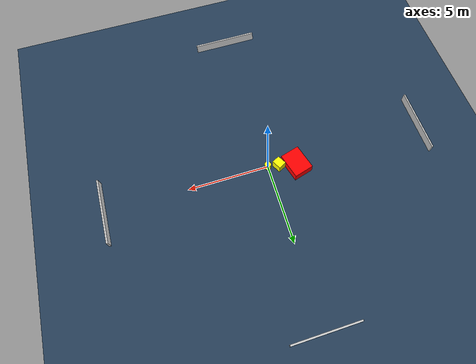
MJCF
<?xml version="1.0" ?>
<mujoco model="generated_environment">
  <option timestep="0.01" integrator="RK4" cone="elliptic"/>
  <default>
    <geom density="1"/>
  </default>
  <asset>
    <texture builtin="gradient" height="3072" name="skybox" rgb1="0.3 0.5 0.7" rgb2="0 0 0" type="skybox" width="512"/>
    <texture builtin="checker" height="300" name="groundplane" rgb1="0.2 0.3 0.4" rgb2="0.1 0.2 0.3" type="2d" width="300"/>
    <material name="groundplane" reflectance="0.2" texrepeat="5 5" texture="groundplane"/>
  </asset>
  <worldbody>
    <light dir="0 0 -1" directional="true" pos="0 0 1.5"/>
    <geom condim="3" friction="0.5 0.005 0.001" material="groundplane" name="floor" pos="0 0 0" size="0 0 0.05" type="plane"/>
    <body name="walls">
      <geom name="wall_1" condim="4" pos="-10.0 0.0 0.3" rgba="0.800000011920929 0.800000011920929 0.800000011920929 1.0" size="0.05 2.0 0.3" type="box"/>
      <geom name="wall_2" condim="4" pos="10.0 0.0 0.3" rgba="0.800000011920929 0.800000011920929 0.800000011920929 1.0" size="0.05 2.0 0.3" type="box"/>
      <geom name="wall_3" condim="4" pos="0.0 -10.0 0.3" rgba="0.800000011920929 0.800000011920929 0.800000011920929 1.0" size="2.0 0.05 0.3" type="box"/>
      <geom name="wall_4" condim="4" pos="0.0 10.0 0.3" rgba="0.800000011920929 0.800000011920929 0.800000011920929 1.0" size="2.0 0.05 0.3" type="box"/>
    </body>
    <body name="robot">
      <joint name="joint_x" type="slide" pos="0 0 0" axis="1 0 0"/>
      <joint name="joint_y" type="slide" pos="0 0 0" axis="0 1 0"/>
      <geom name="robot" type="cylinder" pos="0.0 0.0 0.2" size="0.2 0.2 0.0" mass="5.0" friction="1.0 0.005 0.0001" condim="4" rgba="1.0 1.0 0.0 1.0"/>
    </body>
    <body name="obstacle_1_movable">
      <geom name="obstacle_1_movable" condim="4" pos="-0.6695132757879286 0.14937982075799924 0.3" euler="0 0 298.09989586228124" friction="0.0 0.005 0.001" rgba="1.0 1.0 0.0 1.0" size="0.29554550192739226 0.2559834591526743 0.3" type="box" mass="0.1"/>
      <joint type="free"/>
    </body>
    <body name="obstacle_2_static">
      <geom name="obstacle_2_static" condim="4" pos="-1.7015602245534847 0.4138214658393327 0.3" euler="0 0 195.7043136289979" friction="0.0 0.005 0.001" rgba="1.0 0.0 0.0 1.0" size="0.6068622372154976 0.7893717784698187 0.3" type="box"/>
    </body>
  </worldbody>
  <actuator>
    <motor name="actuator_x" joint="joint_x" gear="1" ctrlrange="-1 1"/>
    <motor name="actuator_y" joint="joint_y" gear="1" ctrlrange="-1 1"/>
  </actuator>
</mujoco>
